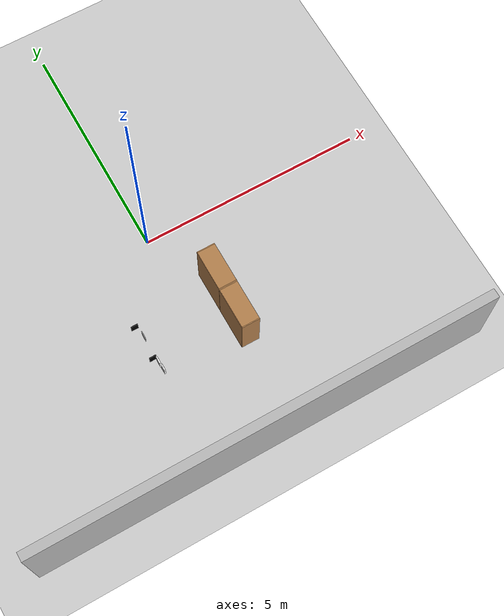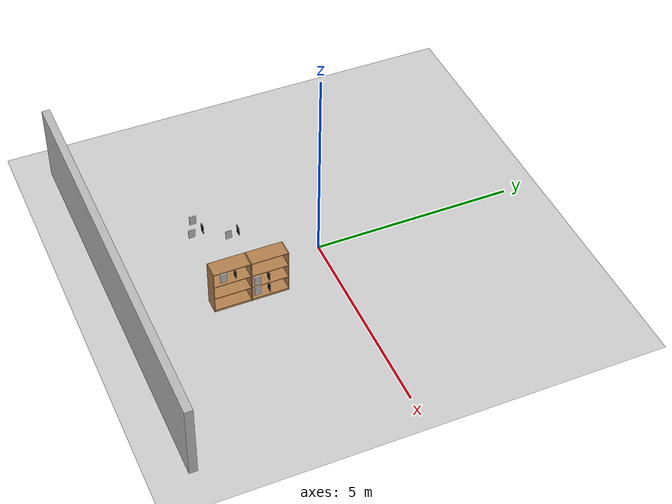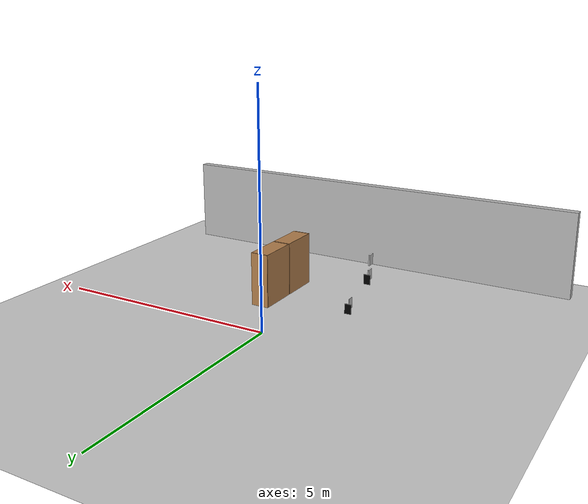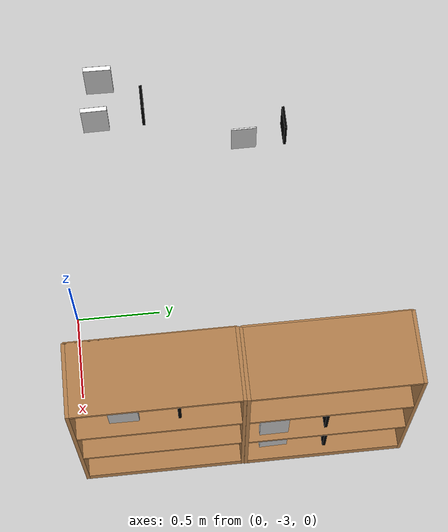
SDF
<sdf version="1.7">
 <world name="default">
  <model name="ground_plane">
   <static>1</static>
   <link name="link">
    <collision name="collision">
     <geometry><plane><normal>0 0 1</normal><size>100 100</size></plane></geometry>
     <surface><friction><ode><mu>100</mu><mu2>50</mu2></ode></friction></surface>
    </collision>
    <visual name="visual">
     <cast_shadows>0</cast_shadows>
     <geometry><plane><normal>0 0 1</normal><size>100 100</size></plane></geometry>
     <material>
      <script><uri>file://media/materials/scripts/gazebo.material</uri><name>Gazebo/Grey</name></script>
     </material>
    </visual>
   </link>
  </model>
  <model name="wall_1_model">
   <pose>0 -5 1 0 -0 0</pose>
   <static>1</static>
   <link name="wall_1_body">
    <inertial>
     <mass>1</mass>
     <inertia><ixx>1</ixx><ixy>0</ixy><ixz>0</ixz><iyy>1</iyy><iyz>0</iyz><izz>1</izz></inertia>
    </inertial>
    <collision name="collision"><geometry><box><size>10 0.2 2</size></box></geometry></collision>
    <visual name="visual"><geometry><box><size>10 0.2 2</size></box></geometry></visual>
   </link>
  </model>
  <model name="bookshelf_clone_6">
   <static>1</static>
   <link name="link">
    <inertial><mass>1</mass></inertial>
    <collision name="back">
     <pose>0 0.005 0.6 0 -0 0</pose>
     <geometry><box><size>0.9 0.01 1.2</size></box></geometry>
    </collision>
    <visual name="visual1">
     <pose>0 0.005 0.6 0 -0 0</pose>
     <geometry><box><size>0.9 0.01 1.2</size></box></geometry>
     <material>
      <script><uri>file://media/materials/scripts/gazebo.material</uri><name>Gazebo/Wood</name></script>
     </material>
    </visual>
    <collision name="left_side">
     <pose>0.45 -0.195 0.6 0 -0 0</pose>
     <geometry><box><size>0.02 0.4 1.2</size></box></geometry>
    </collision>
    <visual name="visual2">
     <pose>0.45 -0.195 0.6 0 -0 0</pose>
     <geometry><box><size>0.02 0.4 1.2</size></box></geometry>
     <material>
      <script><uri>file://media/materials/scripts/gazebo.material</uri><name>Gazebo/Wood</name></script>
     </material>
    </visual>
    <collision name="right_side">
     <pose>-0.45 -0.195 0.6 0 -0 0</pose>
     <geometry><box><size>0.02 0.4 1.2</size></box></geometry>
    </collision>
    <visual name="visual3">
     <pose>-0.45 -0.195 0.6 0 -0 0</pose>
     <geometry><box><size>0.02 0.4 1.2</size></box></geometry>
     <material>
      <script><uri>file://media/materials/scripts/gazebo.material</uri><name>Gazebo/Wood</name></script>
     </material>
    </visual>
    <collision name="bottom">
     <pose>0 -0.195 0.03 0 -0 0</pose>
     <geometry><box><size>0.88 0.4 0.06</size></box></geometry>
    </collision>
    <visual name="visual4">
     <pose>0 -0.195 0.03 0 -0 0</pose>
     <geometry><box><size>0.88 0.4 0.06</size></box></geometry>
     <material>
      <script><uri>file://media/materials/scripts/gazebo.material</uri><name>Gazebo/Wood</name></script>
     </material>
    </visual>
    <collision name="top">
     <pose>0 -0.195 1.19 0 -0 0</pose>
     <geometry><box><size>0.88 0.4 0.02</size></box></geometry>
    </collision>
    <visual name="visual5">
     <pose>0 -0.195 1.19 0 -0 0</pose>
     <geometry><box><size>0.88 0.4 0.02</size></box></geometry>
     <material>
      <script><uri>file://media/materials/scripts/gazebo.material</uri><name>Gazebo/Wood</name></script>
     </material>
    </visual>
    <collision name="low_shelf">
     <pose>0 -0.195 0.43 0 -0 0</pose>
     <geometry><box><size>0.88 0.4 0.02</size></box></geometry>
    </collision>
    <visual name="visual6">
     <pose>0 -0.195 0.43 0 -0 0</pose>
     <geometry><box><size>0.88 0.4 0.02</size></box></geometry>
     <material>
      <script><uri>file://media/materials/scripts/gazebo.material</uri><name>Gazebo/Wood</name></script>
     </material>
    </visual>
    <collision name="high_shelf">
     <pose>0 -0.195 0.8 0 -0 0</pose>
     <geometry><box><size>0.88 0.4 0.02</size></box></geometry>
    </collision>
    <visual name="visual7">
     <pose>0 -0.195 0.8 0 -0 0</pose>
     <geometry><box><size>0.88 0.4 0.02</size></box></geometry>
     <material>
      <script><uri>file://media/materials/scripts/gazebo.material</uri><name>Gazebo/Wood</name></script>
     </material>
    </visual>
   </link>
   <pose>0.599473 -2.54348 0 0 -0 1.57111</pose>
  </model>
  <model name="bookshelf_clone_7">
   <static>1</static>
   <link name="link">
    <inertial><mass>1</mass></inertial>
    <collision name="back">
     <pose>0 0.005 0.6 0 -0 0</pose>
     <geometry><box><size>0.9 0.01 1.2</size></box></geometry>
    </collision>
    <visual name="visual1">
     <pose>0 0.005 0.6 0 -0 0</pose>
     <geometry><box><size>0.9 0.01 1.2</size></box></geometry>
     <material>
      <script><uri>file://media/materials/scripts/gazebo.material</uri><name>Gazebo/Wood</name></script>
     </material>
    </visual>
    <collision name="left_side">
     <pose>0.45 -0.195 0.6 0 -0 0</pose>
     <geometry><box><size>0.02 0.4 1.2</size></box></geometry>
    </collision>
    <visual name="visual2">
     <pose>0.45 -0.195 0.6 0 -0 0</pose>
     <geometry><box><size>0.02 0.4 1.2</size></box></geometry>
     <material>
      <script><uri>file://media/materials/scripts/gazebo.material</uri><name>Gazebo/Wood</name></script>
     </material>
    </visual>
    <collision name="right_side">
     <pose>-0.45 -0.195 0.6 0 -0 0</pose>
     <geometry><box><size>0.02 0.4 1.2</size></box></geometry>
    </collision>
    <visual name="visual3">
     <pose>-0.45 -0.195 0.6 0 -0 0</pose>
     <geometry><box><size>0.02 0.4 1.2</size></box></geometry>
     <material>
      <script><uri>file://media/materials/scripts/gazebo.material</uri><name>Gazebo/Wood</name></script>
     </material>
    </visual>
    <collision name="bottom">
     <pose>0 -0.195 0.03 0 -0 0</pose>
     <geometry><box><size>0.88 0.4 0.06</size></box></geometry>
    </collision>
    <visual name="visual4">
     <pose>0 -0.195 0.03 0 -0 0</pose>
     <geometry><box><size>0.88 0.4 0.06</size></box></geometry>
     <material>
      <script><uri>file://media/materials/scripts/gazebo.material</uri><name>Gazebo/Wood</name></script>
     </material>
    </visual>
    <collision name="top">
     <pose>0 -0.195 1.19 0 -0 0</pose>
     <geometry><box><size>0.88 0.4 0.02</size></box></geometry>
    </collision>
    <visual name="visual5">
     <pose>0 -0.195 1.19 0 -0 0</pose>
     <geometry><box><size>0.88 0.4 0.02</size></box></geometry>
     <material>
      <script><uri>file://media/materials/scripts/gazebo.material</uri><name>Gazebo/Wood</name></script>
     </material>
    </visual>
    <collision name="low_shelf">
     <pose>0 -0.195 0.43 0 -0 0</pose>
     <geometry><box><size>0.88 0.4 0.02</size></box></geometry>
    </collision>
    <visual name="visual6">
     <pose>0 -0.195 0.43 0 -0 0</pose>
     <geometry><box><size>0.88 0.4 0.02</size></box></geometry>
     <material>
      <script><uri>file://media/materials/scripts/gazebo.material</uri><name>Gazebo/Wood</name></script>
     </material>
    </visual>
    <collision name="high_shelf">
     <pose>0 -0.195 0.8 0 -0 0</pose>
     <geometry><box><size>0.88 0.4 0.02</size></box></geometry>
    </collision>
    <visual name="visual7">
     <pose>0 -0.195 0.8 0 -0 0</pose>
     <geometry><box><size>0.88 0.4 0.02</size></box></geometry>
     <material>
      <script><uri>file://media/materials/scripts/gazebo.material</uri><name>Gazebo/Wood</name></script>
     </material>
    </visual>
   </link>
   <pose>0.600978 -1.62562 0 0 -0 1.57111</pose>
  </model>
  <model name="book_1">
   <link name="cover">
    <pose>0 -0.000108 0.015405 0 -0 0</pose>
    <visual name="visual">
     <geometry><box><size>0.245 0.16 0.03</size></box></geometry>
     <material>
      <script>
       <uri>file:///home/bruno/Downloads/lib_world_models/book_1/materials/scripts</uri>
       <uri>file:///home/bruno/Downloads/lib_world_models/book_1/materials/textures</uri>
       <name>book_1</name>
      </script>
     </material>
    </visual>
    <collision name="collision"><geometry><box><size>0.245 0.16 0.03</size></box></geometry></collision>
   </link>
   <link name="page">
    <pose>0 0.000608 0.015405 0 -0 0</pose>
    <visual name="visual">
     <geometry><box><size>0.24502 0.15862 0.028</size></box></geometry>
     <material>
      <lighting>1</lighting>
      <ambient>1 1 1 1</ambient>
      <diffuse>1 1 1 1</diffuse>
      <specular>0.01 0.01 0.01 1</specular>
      <emissive>0 0 0 1</emissive>
      <shader type="vertex"><normal_map>__default__</normal_map></shader>
     </material>
    </visual>
    <collision name="collision"><geometry><box><size>0.245 0.16 0.03</size></box></geometry></collision>
   </link>
   <static>1</static>
   <pose>0.896361 -2.72547 0.935973 -2.42723 -1.55442 -0.725508</pose>
  </model>
  <model name="book_10">
   <link name="cover">
    <pose>0 -0.000108 0.015405 0 -0 0</pose>
    <visual name="visual">
     <geometry><box><size>0.245 0.16 0.03</size></box></geometry>
     <material>
      <script>
       <uri>file:///home/bruno/Downloads/lib_world_models/book_10/materials/scripts</uri>
       <uri>file:///home/bruno/Downloads/lib_world_models/book_10/materials/textures</uri>
       <name>book_10</name>
      </script>
     </material>
    </visual>
    <collision name="collision"><geometry><box><size>0.245 0.16 0.03</size></box></geometry></collision>
   </link>
   <link name="page">
    <pose>0 0.000608 0.015405 0 -0 0</pose>
    <visual name="visual">
     <geometry><box><size>0.24502 0.15862 0.028</size></box></geometry>
     <material>
      <lighting>1</lighting>
      <ambient>1 1 1 1</ambient>
      <diffuse>1 1 1 1</diffuse>
      <specular>0.01 0.01 0.01 1</specular>
      <emissive>0 0 0 1</emissive>
      <shader type="vertex"><normal_map>__default__</normal_map></shader>
     </material>
    </visual>
    <collision name="collision"><geometry><box><size>0.245 0.16 0.03</size></box></geometry></collision>
   </link>
   <static>1</static>
   <pose>0.930987 -1.92081 0.562801 -3.14159 -1.56734 0.006937</pose>
  </model>
  <model name="book_11">
   <link name="cover">
    <pose>0 -0.000108 0.015405 0 -0 0</pose>
    <visual name="visual">
     <geometry><box><size>0.245 0.16 0.03</size></box></geometry>
     <material>
      <script>
       <uri>file:///home/bruno/Downloads/lib_world_models/book_11/materials/scripts</uri>
       <uri>file:///home/bruno/Downloads/lib_world_models/book_11/materials/textures</uri>
       <name>book_11</name>
      </script>
     </material>
    </visual>
    <collision name="collision"><geometry><box><size>0.245 0.16 0.03</size></box></geometry></collision>
   </link>
   <link name="page">
    <pose>0 0.000608 0.015405 0 -0 0</pose>
    <visual name="visual">
     <geometry><box><size>0.24502 0.15862 0.028</size></box></geometry>
     <material>
      <lighting>1</lighting>
      <ambient>1 1 1 1</ambient>
      <diffuse>1 1 1 1</diffuse>
      <specular>0.01 0.01 0.01 1</specular>
      <emissive>0 0 0 1</emissive>
      <shader type="vertex"><normal_map>__default__</normal_map></shader>
     </material>
    </visual>
    <collision name="collision"><geometry><box><size>0.245 0.16 0.03</size></box></geometry></collision>
   </link>
   <static>1</static>
   <pose>0.894098 -1.91062 0.189799 0 -1.56822 -3.12107</pose>
  </model>
  <model name="book_15">
   <link name="cover">
    <pose>0 -0.000108 0.015405 0 -0 0</pose>
    <visual name="visual">
     <geometry><box><size>0.245 0.16 0.03</size></box></geometry>
     <material>
      <script>
       <uri>file:///home/bruno/Downloads/lib_world_models/book_15/materials/scripts</uri>
       <uri>file:///home/bruno/Downloads/lib_world_models/book_15/materials/textures</uri>
       <name>book_15</name>
      </script>
     </material>
    </visual>
    <collision name="collision"><geometry><box><size>0.245 0.16 0.03</size></box></geometry></collision>
   </link>
   <link name="page">
    <pose>0 0.000608 0.015405 0 -0 0</pose>
    <visual name="visual">
     <geometry><box><size>0.24502 0.15862 0.028</size></box></geometry>
     <material>
      <lighting>1</lighting>
      <ambient>1 1 1 1</ambient>
      <diffuse>1 1 1 1</diffuse>
      <specular>0.01 0.01 0.01 1</specular>
      <emissive>0 0 0 1</emissive>
      <shader type="vertex"><normal_map>__default__</normal_map></shader>
     </material>
    </visual>
    <collision name="collision"><geometry><box><size>0.245 0.16 0.03</size></box></geometry></collision>
   </link>
   <static>1</static>
   <pose>-1.08214 -2.77887 0.560128 3.14159 -1.56742 0.014336</pose>
  </model>
  <model name="book_16">
   <link name="cover">
    <pose>0 -0.000108 0.015405 0 -0 0</pose>
    <visual name="visual">
     <geometry><box><size>0.245 0.16 0.03</size></box></geometry>
     <material>
      <script>
       <uri>file:///home/bruno/Downloads/lib_world_models/book_16/materials/scripts</uri>
       <uri>file:///home/bruno/Downloads/lib_world_models/book_16/materials/textures</uri>
       <name>book_16</name>
      </script>
     </material>
    </visual>
    <collision name="collision"><geometry><box><size>0.245 0.16 0.03</size></box></geometry></collision>
   </link>
   <link name="page">
    <pose>0 0.000608 0.015405 0 -0 0</pose>
    <visual name="visual">
     <geometry><box><size>0.24502 0.15862 0.028</size></box></geometry>
     <material>
      <lighting>1</lighting>
      <ambient>1 1 1 1</ambient>
      <diffuse>1 1 1 1</diffuse>
      <specular>0.01 0.01 0.01 1</specular>
      <emissive>0 0 0 1</emissive>
      <shader type="vertex"><normal_map>__default__</normal_map></shader>
     </material>
    </visual>
    <collision name="collision"><geometry><box><size>0.245 0.16 0.03</size></box></geometry></collision>
   </link>
   <static>1</static>
   <pose>-1.12663 -2.72334 0.935901 -0 -1.55661 3.12714</pose>
  </model>
  <model name="book_8">
   <link name="cover">
    <pose>0 -0.000108 0.005 0 -0 0</pose>
    <visual name="visual">
     <geometry><box><size>0.245 0.16 0.01</size></box></geometry>
     <material>
      <script>
       <uri>file:///home/bruno/Downloads/lib_world_models/book_8/materials/scripts</uri>
       <uri>file:///home/bruno/Downloads/lib_world_models/book_8/materials/textures</uri>
       <name>book_8</name>
      </script>
     </material>
    </visual>
    <collision name="collision"><geometry><box><size>0.245 0.16 0.01</size></box></geometry></collision>
   </link>
   <link name="page">
    <pose>0 0.000608 0.005 0 -0 0</pose>
    <visual name="visual">
     <geometry><box><size>0.24502 0.15862 0.008</size></box></geometry>
     <material>
      <lighting>1</lighting>
      <ambient>1 1 1 1</ambient>
      <diffuse>1 1 1 1</diffuse>
      <specular>0.01 0.01 0.01 1</specular>
      <emissive>0 0 0 1</emissive>
      <shader type="vertex"><normal_map>__default__</normal_map></shader>
     </material>
    </visual>
    <collision name="collision"><geometry><box><size>0.245 0.16 0.008</size></box></geometry></collision>
   </link>
   <static>1</static>
   <pose>-1.05818 -1.86868 0.185879 1e-06 -1.5706 -3.13823</pose>
  </model>
  <model name="retry_6_clone_4">
   <link name="link">
    <inertial>
     <mass>0.1</mass>
     <inertia>
      <ixx>0.00037145</ixx>
      <ixy>0</ixy>
      <ixz>0</ixz>
      <iyy>0.00019446</iyy>
      <iyz>0</iyz>
      <izz>0.00056106</izz>
     </inertia>
    </inertial>
    <visual name="visual">
     <geometry><box><size>0.151804 0.220309 0.017052</size></box></geometry>
     <material>
      <shader type="pixel"><normal_map>__default__</normal_map></shader>
      <script><name>ModelPreview_7::link::visual_MATERIAL_</name><uri>__default__</uri></script>
      <ambient>0 0 0 1</ambient>
      <diffuse>0 0 0 1</diffuse>
      <specular>0 0 0 1</specular>
      <emissive>0 0 0 1</emissive>
     </material>
    </visual>
    <collision name="collision">
     <geometry><box><size>0.151804 0.220309 0.017052</size></box></geometry>
     <surface>
      <friction>
       <ode><mu>3.5</mu><mu2>3.5</mu2><fdir1>0 0 0</fdir1><slip1>-0</slip1><slip2>-0</slip2></ode>
       <torsional>
        <coefficient>1</coefficient>
        <patch_radius>0</patch_radius>
        <surface_radius>0</surface_radius>
        <use_patch_radius>1</use_patch_radius>
        <ode><slip>0</slip></ode>
       </torsional>
      </friction>
      <bounce><restitution_coefficient>0</restitution_coefficient><threshold>1e+06</threshold></bounce>
      <contact>
       <collide_without_contact>0</collide_without_contact>
       <collide_without_contact_bitmask>1</collide_without_contact_bitmask>
       <collide_bitmask>1</collide_bitmask>
       <ode>
        <soft_cfm>0</soft_cfm>
        <soft_erp>0.2</soft_erp>
        <kp>1e+13</kp>
        <kd>1</kd>
        <max_vel>0.01</max_vel>
        <min_depth>0</min_depth>
       </ode>
       <bullet>
        <split_impulse>1</split_impulse>
        <split_impulse_penetration_threshold>-0.01</split_impulse_penetration_threshold>
        <soft_cfm>0</soft_cfm>
        <soft_erp>0.2</soft_erp>
        <kp>1e+13</kp>
        <kd>1</kd>
       </bullet>
      </contact>
     </surface>
    </collision>
   </link>
   <static>0</static>
   <pose>0.855559 -2.42955 0.920155 -1.57079 -1.1e-05 0.000107</pose>
  </model>
  <model name="retry_6_clone_5_clone_1">
   <link name="link">
    <inertial>
     <mass>0.1</mass>
     <inertia>
      <ixx>0.00037145</ixx>
      <ixy>0</ixy>
      <ixz>0</ixz>
      <iyy>0.00019446</iyy>
      <iyz>0</iyz>
      <izz>0.00056106</izz>
     </inertia>
    </inertial>
    <visual name="visual">
     <geometry><box><size>0.151804 0.220309 0.017052</size></box></geometry>
     <material>
      <shader type="pixel"><normal_map>__default__</normal_map></shader>
      <script><name>ModelPreview_7::link::visual_MATERIAL_</name><uri>__default__</uri></script>
      <ambient>0 0 0 1</ambient>
      <diffuse>0 0 0 1</diffuse>
      <specular>0 0 0 1</specular>
      <emissive>0 0 0 1</emissive>
     </material>
    </visual>
    <collision name="collision">
     <geometry><box><size>0.151804 0.220309 0.017052</size></box></geometry>
     <surface>
      <friction>
       <ode><mu>3.5</mu><mu2>3.5</mu2><fdir1>0 0 0</fdir1><slip1>-0</slip1><slip2>-0</slip2></ode>
       <torsional>
        <coefficient>1</coefficient>
        <patch_radius>0</patch_radius>
        <surface_radius>0</surface_radius>
        <use_patch_radius>1</use_patch_radius>
        <ode><slip>0</slip></ode>
       </torsional>
      </friction>
      <bounce><restitution_coefficient>0</restitution_coefficient><threshold>1e+06</threshold></bounce>
      <contact>
       <collide_without_contact>0</collide_without_contact>
       <collide_without_contact_bitmask>1</collide_without_contact_bitmask>
       <collide_bitmask>1</collide_bitmask>
       <ode>
        <soft_cfm>0</soft_cfm>
        <soft_erp>0.2</soft_erp>
        <kp>1e+13</kp>
        <kd>1</kd>
        <max_vel>0.01</max_vel>
        <min_depth>0</min_depth>
       </ode>
       <bullet>
        <split_impulse>1</split_impulse>
        <split_impulse_penetration_threshold>-0.01</split_impulse_penetration_threshold>
        <soft_cfm>0</soft_cfm>
        <soft_erp>0.2</soft_erp>
        <kp>1e+13</kp>
        <kd>1</kd>
       </bullet>
      </contact>
     </surface>
    </collision>
   </link>
   <static>0</static>
   <pose>-1.14255 -2.48678 0.550154 -1.5708 1.1e-05 9.6e-05</pose>
  </model>
  <model name="retry_6_clone_5_clone_4">
   <link name="link">
    <inertial>
     <mass>0.1</mass>
     <inertia>
      <ixx>0.00037145</ixx>
      <ixy>0</ixy>
      <ixz>0</ixz>
      <iyy>0.00019446</iyy>
      <iyz>0</iyz>
      <izz>0.00056106</izz>
     </inertia>
    </inertial>
    <visual name="visual">
     <geometry><box><size>0.151804 0.220309 0.017052</size></box></geometry>
     <material>
      <shader type="pixel"><normal_map>__default__</normal_map></shader>
      <script><name>ModelPreview_7::link::visual_MATERIAL_</name><uri>__default__</uri></script>
      <ambient>0 0 0 1</ambient>
      <diffuse>0 0 0 1</diffuse>
      <specular>0 0 0 1</specular>
      <emissive>0 0 0 1</emissive>
     </material>
    </visual>
    <collision name="collision">
     <geometry><box><size>0.151804 0.220309 0.017052</size></box></geometry>
     <surface>
      <friction>
       <ode><mu>3.5</mu><mu2>3.5</mu2><fdir1>0 0 0</fdir1><slip1>-0</slip1><slip2>-0</slip2></ode>
       <torsional>
        <coefficient>1</coefficient>
        <patch_radius>0</patch_radius>
        <surface_radius>0</surface_radius>
        <use_patch_radius>1</use_patch_radius>
        <ode><slip>0</slip></ode>
       </torsional>
      </friction>
      <bounce><restitution_coefficient>0</restitution_coefficient><threshold>1e+06</threshold></bounce>
      <contact>
       <collide_without_contact>0</collide_without_contact>
       <collide_without_contact_bitmask>1</collide_without_contact_bitmask>
       <collide_bitmask>1</collide_bitmask>
       <ode>
        <soft_cfm>0</soft_cfm>
        <soft_erp>0.2</soft_erp>
        <kp>1e+13</kp>
        <kd>1</kd>
        <max_vel>0.01</max_vel>
        <min_depth>0</min_depth>
       </ode>
       <bullet>
        <split_impulse>1</split_impulse>
        <split_impulse_penetration_threshold>-0.01</split_impulse_penetration_threshold>
        <soft_cfm>0</soft_cfm>
        <soft_erp>0.2</soft_erp>
        <kp>1e+13</kp>
        <kd>1</kd>
       </bullet>
      </contact>
     </surface>
    </collision>
   </link>
   <static>0</static>
   <pose>0.878666 -1.62963 0.550154 -1.5708 1.1e-05 9.6e-05</pose>
  </model>
  <model name="retry_6_clone_5_clone_5">
   <link name="link">
    <inertial>
     <mass>0.1</mass>
     <inertia>
      <ixx>0.00037145</ixx>
      <ixy>0</ixy>
      <ixz>0</ixz>
      <iyy>0.00019446</iyy>
      <iyz>0</iyz>
      <izz>0.00056106</izz>
     </inertia>
    </inertial>
    <visual name="visual">
     <geometry><box><size>0.151804 0.220309 0.017052</size></box></geometry>
     <material>
      <shader type="pixel"><normal_map>__default__</normal_map></shader>
      <script><name>ModelPreview_7::link::visual_MATERIAL_</name><uri>__default__</uri></script>
      <ambient>0 0 0 1</ambient>
      <diffuse>0 0 0 1</diffuse>
      <specular>0 0 0 1</specular>
      <emissive>0 0 0 1</emissive>
     </material>
    </visual>
    <collision name="collision">
     <geometry><box><size>0.151804 0.220309 0.017052</size></box></geometry>
     <surface>
      <friction>
       <ode><mu>3.5</mu><mu2>3.5</mu2><fdir1>0 0 0</fdir1><slip1>-0</slip1><slip2>-0</slip2></ode>
       <torsional>
        <coefficient>1</coefficient>
        <patch_radius>0</patch_radius>
        <surface_radius>0</surface_radius>
        <use_patch_radius>1</use_patch_radius>
        <ode><slip>0</slip></ode>
       </torsional>
      </friction>
      <bounce><restitution_coefficient>0</restitution_coefficient><threshold>1e+06</threshold></bounce>
      <contact>
       <collide_without_contact>0</collide_without_contact>
       <collide_without_contact_bitmask>1</collide_without_contact_bitmask>
       <collide_bitmask>1</collide_bitmask>
       <ode>
        <soft_cfm>0</soft_cfm>
        <soft_erp>0.2</soft_erp>
        <kp>1e+13</kp>
        <kd>1</kd>
        <max_vel>0.01</max_vel>
        <min_depth>0</min_depth>
       </ode>
       <bullet>
        <split_impulse>1</split_impulse>
        <split_impulse_penetration_threshold>-0.01</split_impulse_penetration_threshold>
        <soft_cfm>0</soft_cfm>
        <soft_erp>0.2</soft_erp>
        <kp>1e+13</kp>
        <kd>1</kd>
       </bullet>
      </contact>
     </surface>
    </collision>
   </link>
   <static>0</static>
   <pose>0.875484 -1.61549 0.170154 -1.5708 1.1e-05 5.9e-05</pose>
  </model>
  <model name="retry_6_clone_5_clone_5_clone_0">
   <link name="link">
    <inertial>
     <mass>0.1</mass>
     <inertia>
      <ixx>0.00037145</ixx>
      <ixy>0</ixy>
      <ixz>0</ixz>
      <iyy>0.00019446</iyy>
      <iyz>0</iyz>
      <izz>0.00056106</izz>
     </inertia>
    </inertial>
    <visual name="visual">
     <geometry><box><size>0.151804 0.220309 0.017052</size></box></geometry>
     <material>
      <shader type="pixel"><normal_map>__default__</normal_map></shader>
      <script><name>ModelPreview_7::link::visual_MATERIAL_</name><uri>__default__</uri></script>
      <ambient>0 0 0 1</ambient>
      <diffuse>0 0 0 1</diffuse>
      <specular>0 0 0 1</specular>
      <emissive>0 0 0 1</emissive>
     </material>
    </visual>
    <collision name="collision">
     <geometry><box><size>0.151804 0.220309 0.017052</size></box></geometry>
     <surface>
      <friction>
       <ode><mu>3.5</mu><mu2>3.5</mu2><fdir1>0 0 0</fdir1><slip1>-0</slip1><slip2>-0</slip2></ode>
       <torsional>
        <coefficient>1</coefficient>
        <patch_radius>0</patch_radius>
        <surface_radius>0</surface_radius>
        <use_patch_radius>1</use_patch_radius>
        <ode><slip>0</slip></ode>
       </torsional>
      </friction>
      <bounce><restitution_coefficient>0</restitution_coefficient><threshold>1e+06</threshold></bounce>
      <contact>
       <collide_without_contact>0</collide_without_contact>
       <collide_without_contact_bitmask>1</collide_without_contact_bitmask>
       <collide_bitmask>1</collide_bitmask>
       <ode>
        <soft_cfm>0</soft_cfm>
        <soft_erp>0.2</soft_erp>
        <kp>1e+13</kp>
        <kd>1</kd>
        <max_vel>0.01</max_vel>
        <min_depth>0</min_depth>
       </ode>
       <bullet>
        <split_impulse>1</split_impulse>
        <split_impulse_penetration_threshold>-0.01</split_impulse_penetration_threshold>
        <soft_cfm>0</soft_cfm>
        <soft_erp>0.2</soft_erp>
        <kp>1e+13</kp>
        <kd>1</kd>
       </bullet>
      </contact>
     </surface>
    </collision>
   </link>
   <static>0</static>
   <pose>-1.12699 -1.60306 0.170154 -1.5708 1.1e-05 5.9e-05</pose>
  </model>
 </world>
</sdf>
